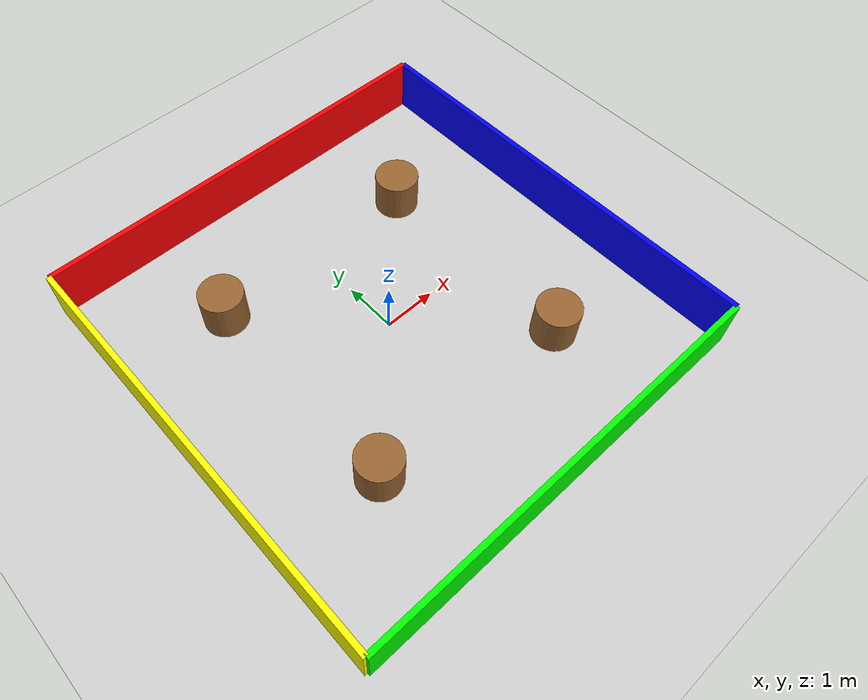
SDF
<?xml version="1.0"?>
<sdf version="1.8">
  <world name="restaurant">

    <plugin filename="gz-sim-sensors-system"
      name="gz::sim::systems::Sensors">
      <render_engine>ogre2</render_engine>
    </plugin>
    <plugin
      filename="gz-sim-physics-system"
      name="gz::sim::systems::Physics">
    </plugin>
    <plugin
      filename="gz-sim-user-commands-system"
      name="gz::sim::systems::UserCommands">
    </plugin>
    <plugin
      filename="gz-sim-scene-broadcaster-system"
      name="gz::sim::systems::SceneBroadcaster">
    </plugin>
    <plugin
      filename="gz-sim-contact-system"
      name="gz::sim::systems::Contact">
    </plugin>

    <light type="directional" name="sun">
      <cast_shadows>true</cast_shadows>
      <pose>0 0 10 0 0 0</pose>
      <diffuse>0.8 0.8 0.8 1</diffuse>
      <specular>0.2 0.2 0.2 1</specular>
      <attenuation>
        <range>1000</range>
        <constant>0.9</constant>
        <linear>0.01</linear>
        <quadratic>0.001</quadratic>
      </attenuation>
      <direction>-0.5 0.1 -0.9</direction>
    </light>

    <model name="ground_plane">
      <static>true</static>
      <link name="link">
        <collision name="collision">
          <geometry>
            <plane>
              <normal>0 0 1</normal>
              <size>100 100</size>
            </plane>
          </geometry>
        </collision>
        <visual name="visual">
          <geometry>
            <plane>
              <normal>0 0 1</normal>
              <size>100 100</size>
            </plane>
          </geometry>
          <material>
            <ambient>0.8 0.8 0.8 1</ambient>
            <diffuse>0.8 0.8 0.8 1</diffuse>
            <specular>0.8 0.8 0.8 1</specular>
          </material>
        </visual>
      </link>
    </model>

    <model name="wall_north">
      <static>true</static>
      <pose>0 4 0.5 0 0 0</pose>
      <link name="link">
        <collision name="collision">
          <geometry>
            <box>
              <size>8 0.1 1</size>
            </box>
          </geometry>
        </collision>
        <visual name="visual">
          <geometry>
            <box>
              <size>8 0.1 1</size>
            </box>
          </geometry>
          <material>
            <ambient>0.3 0 0 1</ambient>
            <diffuse>1 0 0 1</diffuse>
          </material>
        </visual>
      </link>
    </model>

    <model name="wall_south">
      <static>true</static>
      <pose>0 -4 0.5 0 0 0</pose>
      <link name="link">
        <collision name="collision">
          <geometry>
            <box>
              <size>8 0.1 1</size>
            </box>
          </geometry>
        </collision>
        <visual name="visual">
          <geometry>
            <box>
              <size>8 0.1 1</size>
            </box>
          </geometry>
          <material>
            <ambient>0 0.3 0 1</ambient>
            <diffuse>0 1 0 1</diffuse>
          </material>
        </visual>
      </link>
    </model>

    <model name="wall_east">
      <static>true</static>
      <pose>4 0 0.5 0 0 1.5708</pose>
      <link name="link">
        <collision name="collision">
          <geometry>
            <box>
              <size>8 0.1 1</size>
            </box>
          </geometry>
        </collision>
        <visual name="visual">
          <geometry>
            <box>
              <size>8 0.1 1</size>
            </box>
          </geometry>
          <material>
            <ambient>0 0 0.3 1</ambient>
            <diffuse>0 0 1 1</diffuse>
          </material>
        </visual>
      </link>
    </model>

    <model name="wall_west">
      <static>true</static>
      <pose>-4 0 0.5 0 0 1.5708</pose>
      <link name="link">
        <collision name="collision">
          <geometry>
            <box>
              <size>8 0.1 1</size>
            </box>
          </geometry>
        </collision>
        <visual name="visual">
          <geometry>
            <box>
              <size>8 0.1 1</size>
            </box>
          </geometry>
          <material>
            <ambient>0.3 0.3 0 1</ambient>
            <diffuse>1 1 0 1</diffuse>
          </material>
        </visual>
      </link>
    </model>

    <model name="table_1">
      <static>true</static>
      <pose>2 2 0.375 0 0 0</pose>
      <link name="link">
        <collision name="collision">
          <geometry>
            <cylinder>
              <radius>0.4</radius>
              <length>0.75</length>
            </cylinder>
          </geometry>
        </collision>
        <visual name="visual">
          <geometry>
            <cylinder>
              <radius>0.4</radius>
              <length>0.75</length>
            </cylinder>
          </geometry>
          <material>
            <ambient>0.6 0.4 0.2 1</ambient>
            <diffuse>0.6 0.4 0.2 1</diffuse>
          </material>
        </visual>
      </link>
    </model>

    <model name="table_2">
      <static>true</static>
      <pose>2 -2 0.375 0 0 0</pose>
      <link name="link">
        <collision name="collision">
          <geometry>
            <cylinder>
              <radius>0.4</radius>
              <length>0.75</length>
            </cylinder>
          </geometry>
        </collision>
        <visual name="visual">
          <geometry>
            <cylinder>
              <radius>0.4</radius>
              <length>0.75</length>
            </cylinder>
          </geometry>
          <material>
            <ambient>0.6 0.4 0.2 1</ambient>
            <diffuse>0.6 0.4 0.2 1</diffuse>
          </material>
        </visual>
      </link>
    </model>

    <model name="table_3">
      <static>true</static>
      <pose>-2 2 0.375 0 0 0</pose>
      <link name="link">
        <collision name="collision">
          <geometry>
            <cylinder>
              <radius>0.4</radius>
              <length>0.75</length>
            </cylinder>
          </geometry>
        </collision>
        <visual name="visual">
          <geometry>
            <cylinder>
              <radius>0.4</radius>
              <length>0.75</length>
            </cylinder>
          </geometry>
          <material>
            <ambient>0.6 0.4 0.2 1</ambient>
            <diffuse>0.6 0.4 0.2 1</diffuse>
          </material>
        </visual>
      </link>
    </model>

    <model name="table_4">
      <static>true</static>
      <pose>-2 -2 0.375 0 0 0</pose>
      <link name="link">
        <collision name="collision">
          <geometry>
            <cylinder>
              <radius>0.4</radius>
              <length>0.75</length>
            </cylinder>
          </geometry>
        </collision>
        <visual name="visual">
          <geometry>
            <cylinder>
              <radius>0.4</radius>
              <length>0.75</length>
            </cylinder>
          </geometry>
          <material>
            <ambient>0.6 0.4 0.2 1</ambient>
            <diffuse>0.6 0.4 0.2 1</diffuse>
          </material>
        </visual>
      </link>
    </model>

    <model name="spectator">
      <static>true</static>
      <pose>0 0 10 0 1.5708 1.5708</pose>
      <link name="link">
        <sensor name="cam" type="camera">
          <topic>spectator</topic>
          <update_rate>10</update_rate>
          <camera>
            <horizontal_fov>1.2</horizontal_fov>
            <image>
              <width>320</width>
              <height>240</height>
            </image>
            <clip>
              <near>0.1</near>
              <far>100</far>
            </clip>
          </camera>
        </sensor>
      </link>
    </model>
  </world>
</sdf>
